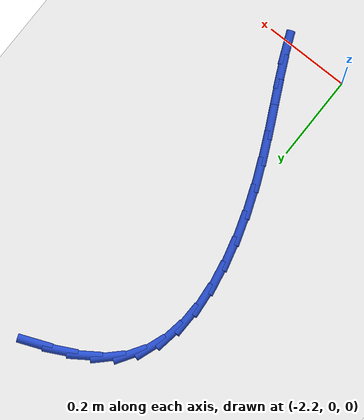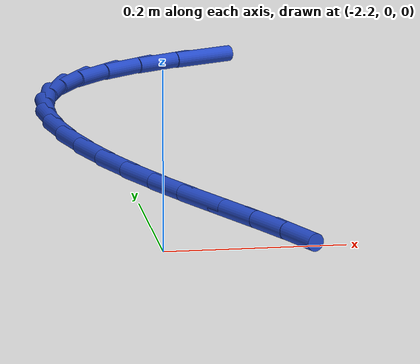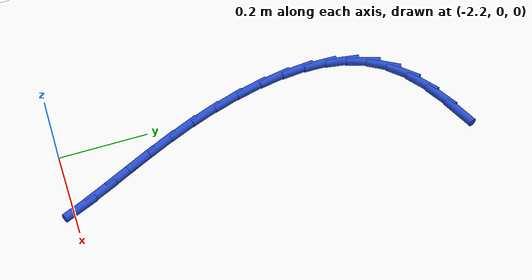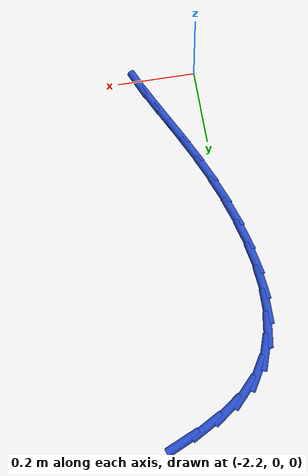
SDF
<sdf version="1.6">
 <world name="default">
  <model name="ground_plane">
   <static>1</static>
   <link name="link">
    <collision name="collision">
     <geometry><plane><normal>0 0 1</normal><size>100 100</size></plane></geometry>
     <surface><friction><ode><mu>100</mu><mu2>50</mu2></ode></friction></surface>
    </collision>
    <visual name="visual">
     <cast_shadows>0</cast_shadows>
     <geometry><plane><normal>0 0 1</normal><size>100 100</size></plane></geometry>
     <material>
      <script><uri>file://media/materials/scripts/gazebo.material</uri><name>Gazebo/WhiteGlow</name></script>
     </material>
    </visual>
   </link>
  </model>
  <model name="line">
   <link name="link_57">
    <pose>-2.027309586355094 0.8796751919539239 0.01 0 1.57 0.3851233886856084</pose>
    <collision name="collision">
     <geometry><cylinder><radius>0.01</radius><length>0.08</length></cylinder></geometry>
    </collision>
    <visual name="visual">
     <material>
      <script><name>Gazebo/Blue</name><uri>file://media/materials/scripts/gazebo.material</uri></script>
     </material>
     <geometry><cylinder><radius>0.01</radius><length>0.08</length></cylinder></geometry>
    </visual>
   </link>
   <link name="link_58">
    <pose>-2.081343421193494 0.857771729702167 0.01 0 1.57 0.4729705070123115</pose>
    <collision name="collision">
     <geometry><cylinder><radius>0.01</radius><length>0.08</length></cylinder></geometry>
    </collision>
    <visual name="visual">
     <material>
      <script><name>Gazebo/Blue</name><uri>file://media/materials/scripts/gazebo.material</uri></script>
     </material>
     <geometry><cylinder><radius>0.01</radius><length>0.08</length></cylinder></geometry>
    </visual>
   </link>
   <link name="link_59">
    <pose>-2.130382688968956 0.832677917561482 0.01 0 1.57 0.6023907293510983</pose>
    <collision name="collision">
     <geometry><cylinder><radius>0.01</radius><length>0.08</length></cylinder></geometry>
    </collision>
    <visual name="visual">
     <material>
      <script><name>Gazebo/Blue</name><uri>file://media/materials/scripts/gazebo.material</uri></script>
     </material>
     <geometry><cylinder><radius>0.01</radius><length>0.08</length></cylinder></geometry>
    </visual>
   </link>
   <link name="link_60">
    <pose>-2.1729865341209385 0.8033812872107806 0.01 0 1.57 0.7822836198326191</pose>
    <collision name="collision">
     <geometry><cylinder><radius>0.01</radius><length>0.08</length></cylinder></geometry>
    </collision>
    <visual name="visual">
     <material>
      <script><name>Gazebo/Blue</name><uri>file://media/materials/scripts/gazebo.material</uri></script>
     </material>
     <geometry><cylinder><radius>0.01</radius><length>0.08</length></cylinder></geometry>
    </visual>
   </link>
   <link name="link_61">
    <pose>-2.2077141010888974 0.7688693703289745 0.01 0 1.57 1.0095461562873214</pose>
    <collision name="collision">
     <geometry><cylinder><radius>0.01</radius><length>0.08</length></cylinder></geometry>
    </collision>
    <visual name="visual">
     <material>
      <script><name>Gazebo/Blue</name><uri>file://media/materials/scripts/gazebo.material</uri></script>
     </material>
     <geometry><cylinder><radius>0.01</radius><length>0.08</length></cylinder></geometry>
    </visual>
   </link>
   <link name="link_62">
    <pose>-2.233254900040821 0.7282441042411204 0.01 0 1.57 1.2311875582966627</pose>
    <collision name="collision">
     <geometry><cylinder><radius>0.01</radius><length>0.08</length></cylinder></geometry>
    </collision>
    <visual name="visual">
     <material>
      <script><name>Gazebo/Blue</name><uri>file://media/materials/scripts/gazebo.material</uri></script>
     </material>
     <geometry><cylinder><radius>0.01</radius><length>0.08</length></cylinder></geometry>
    </visual>
   </link>
   <link name="link_63">
    <pose>-2.249662015348921 0.681804064297169 0.01 0 1.57 1.4132793351795019</pose>
    <collision name="collision">
     <geometry><cylinder><radius>0.01</radius><length>0.08</length></cylinder></geometry>
    </collision>
    <visual name="visual">
     <material>
      <script><name>Gazebo/Blue</name><uri>file://media/materials/scripts/gazebo.material</uri></script>
     </material>
     <geometry><cylinder><radius>0.01</radius><length>0.08</length></cylinder></geometry>
    </visual>
   </link>
   <link name="link_64">
    <pose>-2.257801107251215 0.6305609217505547 0.01 0 1.57 1.557211519991841</pose>
    <collision name="collision">
     <geometry><cylinder><radius>0.01</radius><length>0.08</length></cylinder></geometry>
    </collision>
    <visual name="visual">
     <material>
      <script><name>Gazebo/Blue</name><uri>file://media/materials/scripts/gazebo.material</uri></script>
     </material>
     <geometry><cylinder><radius>0.01</radius><length>0.08</length></cylinder></geometry>
    </visual>
   </link>
   <link name="link_65">
    <pose>-2.2585486582718968 0.5755358452176833 0.01 0 1.57 -1.4713174680209233</pose>
    <collision name="collision">
     <geometry><cylinder><radius>0.01</radius><length>0.08</length></cylinder></geometry>
    </collision>
    <visual name="visual">
     <material>
      <script><name>Gazebo/Blue</name><uri>file://media/materials/scripts/gazebo.material</uri></script>
     </material>
     <geometry><cylinder><radius>0.01</radius><length>0.08</length></cylinder></geometry>
    </visual>
   </link>
   <link name="link_66">
    <pose>-2.2527811509351587 0.5177500033149607 0.01 0 1.57 -1.3814742295364217</pose>
    <collision name="collision">
     <geometry><cylinder><radius>0.01</radius><length>0.08</length></cylinder></geometry>
    </collision>
    <visual name="visual">
     <material>
      <script><name>Gazebo/Blue</name><uri>file://media/materials/scripts/gazebo.material</uri></script>
     </material>
     <geometry><cylinder><radius>0.01</radius><length>0.08</length></cylinder></geometry>
    </visual>
   </link>
   <link name="link_67">
    <pose>-2.241375067765196 0.4582245646587926 0.01 0 1.57 -1.308596155814695</pose>
    <collision name="collision">
     <geometry><cylinder><radius>0.01</radius><length>0.08</length></cylinder></geometry>
    </collision>
    <visual name="visual">
     <material>
      <script><name>Gazebo/Blue</name><uri>file://media/materials/scripts/gazebo.material</uri></script>
     </material>
     <geometry><cylinder><radius>0.01</radius><length>0.08</length></cylinder></geometry>
    </visual>
   </link>
   <link name="link_68">
    <pose>-2.2252068912862017 0.39798069786558604 0.01 0 1.57 -1.2479439187312864</pose>
    <collision name="collision">
     <geometry><cylinder><radius>0.01</radius><length>0.08</length></cylinder></geometry>
    </collision>
    <visual name="visual">
     <material>
      <script><name>Gazebo/Blue</name><uri>file://media/materials/scripts/gazebo.material</uri></script>
     </material>
     <geometry><cylinder><radius>0.01</radius><length>0.08</length></cylinder></geometry>
    </visual>
   </link>
   <link name="link_69">
    <pose>-2.2051531040223704 0.3380395715517465 0.01 0 1.57 -1.1959496456355967</pose>
    <collision name="collision">
     <geometry><cylinder><radius>0.01</radius><length>0.08</length></cylinder></geometry>
    </collision>
    <visual name="visual">
     <material>
      <script><name>Gazebo/Blue</name><uri>file://media/materials/scripts/gazebo.material</uri></script>
     </material>
     <geometry><cylinder><radius>0.01</radius><length>0.08</length></cylinder></geometry>
    </visual>
   </link>
   <link name="link_70">
    <pose>-2.182090188497896 0.2794223543336802 0.01 0 1.57 -1.1510514619495922</pose>
    <collision name="collision">
     <geometry><cylinder><radius>0.01</radius><length>0.08</length></cylinder></geometry>
    </collision>
    <visual name="visual">
     <material>
      <script><name>Gazebo/Blue</name><uri>file://media/materials/scripts/gazebo.material</uri></script>
     </material>
     <geometry><cylinder><radius>0.01</radius><length>0.08</length></cylinder></geometry>
    </visual>
   </link>
   <link name="link_71">
    <pose>-2.1569021951676572 0.22298076695530047 0.01 0 1.57 -1.1187966108798046</pose>
    <collision name="collision">
     <geometry><cylinder><radius>0.01</radius><length>0.08</length></cylinder></geometry>
    </collision>
    <visual name="visual">
     <material>
      <script><name>Gazebo/Blue</name><uri>file://media/materials/scripts/gazebo.material</uri></script>
     </material>
     <geometry><cylinder><radius>0.01</radius><length>0.08</length></cylinder></geometry>
    </visual>
   </link>
   <link name="link_72">
    <pose>-2.1305148843784867 0.1686326351836896 0.01 0 1.57 -1.1023268495115446</pose>
    <collision name="collision">
     <geometry><cylinder><radius>0.01</radius><length>0.08</length></cylinder></geometry>
    </collision>
    <visual name="visual">
     <material>
      <script><name>Gazebo/Blue</name><uri>file://media/materials/scripts/gazebo.material</uri></script>
     </material>
     <geometry><cylinder><radius>0.01</radius><length>0.08</length></cylinder></geometry>
    </visual>
   </link>
   <link name="link_73">
    <pose>-2.1038683084735488 0.11597578339146013 0.01 0 1.57 -1.1027702477081829</pose>
    <collision name="collision">
     <geometry><cylinder><radius>0.01</radius><length>0.08</length></cylinder></geometry>
    </collision>
    <visual name="visual">
     <material>
      <script><name>Gazebo/Blue</name><uri>file://media/materials/scripts/gazebo.material</uri></script>
     </material>
     <geometry><cylinder><radius>0.01</radius><length>0.08</length></cylinder></geometry>
    </visual>
   </link>
   <link name="link_74">
    <pose>-2.0779025324717244 0.06460775213880629 0.01 0 1.57 -1.1214472644439497</pose>
    <collision name="collision">
     <geometry><cylinder><radius>0.01</radius><length>0.08</length></cylinder></geometry>
    </collision>
    <visual name="visual">
     <material>
      <script><name>Gazebo/Blue</name><uri>file://media/materials/scripts/gazebo.material</uri></script>
     </material>
     <geometry><cylinder><radius>0.01</radius><length>0.08</length></cylinder></geometry>
    </visual>
   </link>
   <link name="link_75">
    <pose>-2.0535576213918927 0.014126081985922379 0.01 0 1.57 -1.15989848623202</pose>
    <collision name="collision">
     <geometry><cylinder><radius>0.01</radius><length>0.08</length></cylinder></geometry>
    </collision>
    <visual name="visual">
     <material>
      <script><name>Gazebo/Blue</name><uri>file://media/materials/scripts/gazebo.material</uri></script>
     </material>
     <geometry><cylinder><radius>0.01</radius><length>0.08</length></cylinder></geometry>
    </visual>
   </link>
  </model>
 </world>
</sdf>
